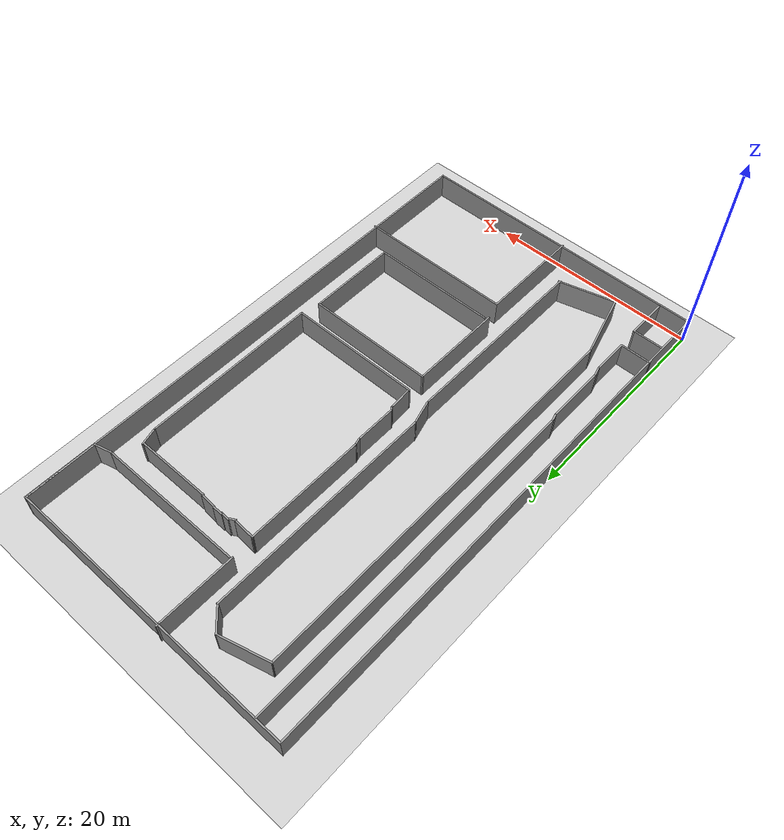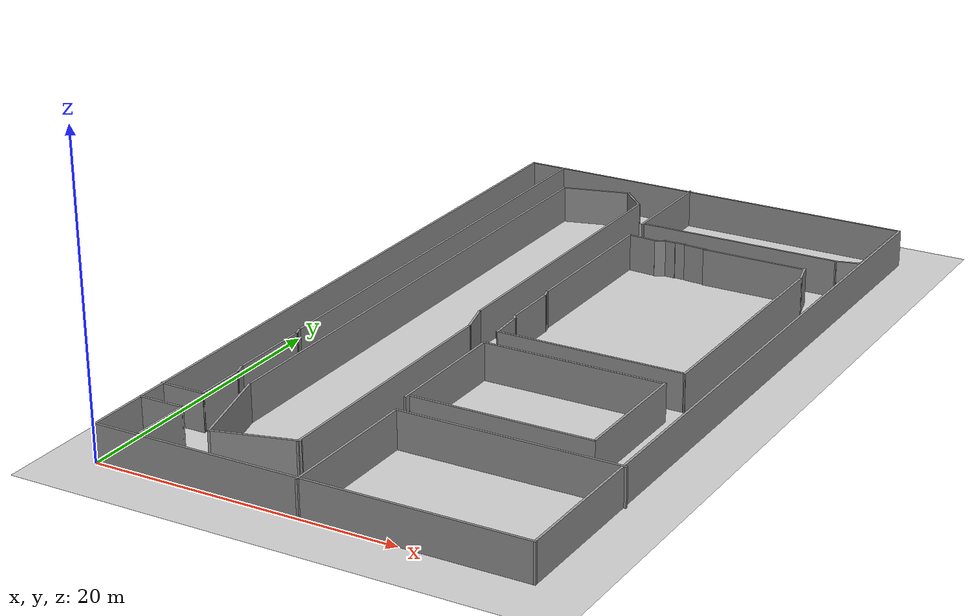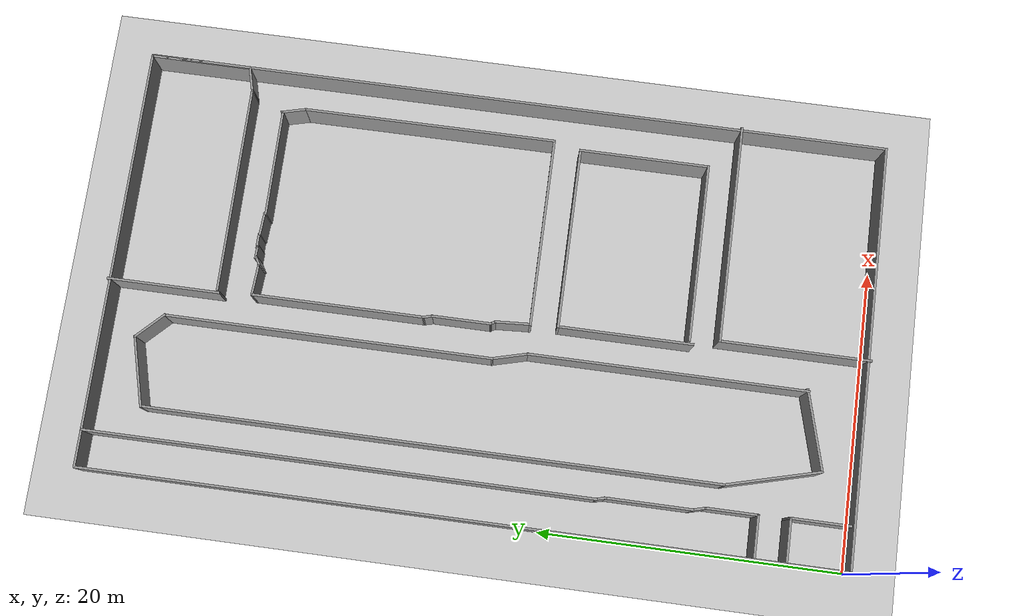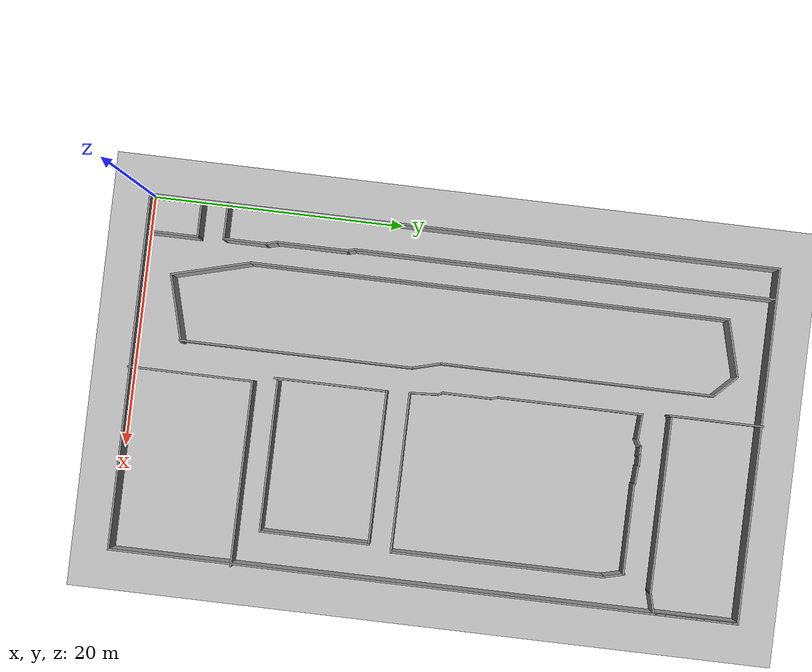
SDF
<?xml version="1.0"?>
<sdf version="1.4">
<world name="diff_robot_world">
<include>
<uri>model://sun</uri>
</include>
<include>
<uri>model://ground_plane</uri>
</include>
<include>

<uri>model://campus2</uri>
<pose>14.197271 24.992161 0 0 0 1.570796326794897</pose>
</include>
</world>
</sdf>

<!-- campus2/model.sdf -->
<sdf version='1.6'>
  <model name='campus2'>
    <pose frame=''>-0.091204 0.059428 0 0 -0 0</pose>
    <link name='Wall_10'>
      <collision name='Wall_10_Collision'>
        <geometry>
          <box>
            <size>14.75 0.15 2.5</size>
          </box>
        </geometry>
        <pose frame=''>0 0 1.25 0 -0 0</pose>
      </collision>
      <visual name='Wall_10_Visual'>
        <pose frame=''>0 0 1.25 0 -0 0</pose>
        <geometry>
          <box>
            <size>14.75 0.15 2.5</size>
          </box>
        </geometry>
        <material>
          <script>
            <uri>file://media/materials/scripts/gazebo.material</uri>
            <name>Gazebo/Grey</name>
          </script>
          <ambient>1 1 1 1</ambient>
        </material>
      </visual>
      <pose frame=''>-15.2127 -6.85313 0 0 0 -1.5708</pose>
    </link>
    <link name='Wall_12'>
      <collision name='Wall_12_Collision'>
        <geometry>
          <box>
            <size>12 0.15 2.5</size>
          </box>
        </geometry>
        <pose frame=''>0 0 1.25 0 -0 0</pose>
      </collision>
      <visual name='Wall_12_Visual'>
        <pose frame=''>0 0 1.25 0 -0 0</pose>
        <geometry>
          <box>
            <size>12 0.15 2.5</size>
          </box>
        </geometry>
        <material>
          <script>
            <uri>file://media/materials/scripts/gazebo.material</uri>
            <name>Gazebo/Grey</name>
          </script>
          <ambient>1 1 1 1</ambient>
        </material>
      </visual>
      <pose frame=''>-13.2463 -5.26585 0 0 0 -1.5708</pose>
    </link>
    <link name='Wall_13'>
      <collision name='Wall_13_Collision'>
        <geometry>
          <box>
            <size>8.75 0.15 2.5</size>
          </box>
        </geometry>
        <pose frame=''>0 0 1.25 0 -0 0</pose>
      </collision>
      <visual name='Wall_13_Visual'>
        <pose frame=''>0 0 1.25 0 -0 0</pose>
        <geometry>
          <box>
            <size>8.75 0.15 2.5</size>
          </box>
        </geometry>
        <material>
          <script>
            <uri>file://media/materials/scripts/gazebo.material</uri>
            <name>Gazebo/Grey</name>
          </script>
          <ambient>1 1 1 1</ambient>
        </material>
      </visual>
      <pose frame=''>-8.94626 -11.1909 0 0 -0 0</pose>
    </link>
    <link name='Wall_14'>
      <collision name='Wall_14_Collision'>
        <geometry>
          <box>
            <size>12.25 0.15 2.5</size>
          </box>
        </geometry>
        <pose frame=''>0 0 1.25 0 -0 0</pose>
      </collision>
      <visual name='Wall_14_Visual'>
        <pose frame=''>0 0 1.25 0 -0 0</pose>
        <geometry>
          <box>
            <size>12.25 0.15 2.5</size>
          </box>
        </geometry>
        <material>
          <script>
            <uri>file://media/materials/scripts/gazebo.material</uri>
            <name>Gazebo/Grey</name>
          </script>
          <ambient>1 1 1 1</ambient>
        </material>
      </visual>
      <pose frame=''>-4.64626 -5.14085 0 0 -0 1.5708</pose>
    </link>
    <link name='Wall_15'>
      <collision name='Wall_15_Collision'>
        <geometry>
          <box>
            <size>9 0.15 2.5</size>
          </box>
        </geometry>
        <pose frame=''>0 0 1.25 0 -0 0</pose>
      </collision>
      <visual name='Wall_15_Visual'>
        <pose frame=''>0 0 1.25 0 -0 0</pose>
        <geometry>
          <box>
            <size>9 0.15 2.5</size>
          </box>
        </geometry>
        <material>
          <script>
            <uri>file://media/materials/scripts/gazebo.material</uri>
            <name>Gazebo/Grey</name>
          </script>
          <ambient>1 1 1 1</ambient>
        </material>
      </visual>
      <pose frame=''>-9.07126 0.909146 0 0 -0 3.14159</pose>
    </link>
    <link name='Wall_19'>
      <collision name='Wall_19_Collision'>
        <geometry>
          <box>
            <size>12.75 0.15 2.5</size>
          </box>
        </geometry>
        <pose frame=''>0 0 1.25 0 -0 0</pose>
      </collision>
      <visual name='Wall_19_Visual'>
        <pose frame=''>0 0 1.25 0 -0 0</pose>
        <geometry>
          <box>
            <size>12.75 0.15 2.5</size>
          </box>
        </geometry>
        <material>
          <script>
            <uri>file://media/materials/scripts/gazebo.material</uri>
            <name>Gazebo/Grey</name>
          </script>
          <ambient>1 1 1 1</ambient>
        </material>
      </visual>
      <pose frame=''>-2.83141 -5.28643 0 0 0 -1.5708</pose>
    </link>
    <link name='Wall_20'>
      <collision name='Wall_20_Collision'>
        <geometry>
          <box>
            <size>17 0.15 2.5</size>
          </box>
        </geometry>
        <pose frame=''>0 0 1.25 0 -0 0</pose>
      </collision>
      <visual name='Wall_20_Visual'>
        <pose frame=''>0 0 1.25 0 -0 0</pose>
        <geometry>
          <box>
            <size>17 0.15 2.5</size>
          </box>
        </geometry>
        <material>
          <script>
            <uri>file://media/materials/scripts/gazebo.material</uri>
            <name>Gazebo/Grey</name>
          </script>
          <ambient>1 1 1 1</ambient>
        </material>
      </visual>
      <pose frame=''>5.59359 -11.5831 0 0 -0 0.001951</pose>
    </link>
    <link name='Wall_21'>
      <collision name='Wall_21_Collision'>
        <geometry>
          <box>
            <size>1.77463 0.15 2.5</size>
          </box>
        </geometry>
        <pose frame=''>0 0 1.25 0 -0 0</pose>
      </collision>
      <visual name='Wall_21_Visual'>
        <pose frame=''>0 0 1.25 0 -0 0</pose>
        <geometry>
          <box>
            <size>1.77463 0.15 2.5</size>
          </box>
        </geometry>
        <material>
          <script>
            <uri>file://media/materials/scripts/gazebo.material</uri>
            <name>Gazebo/Grey</name>
          </script>
          <ambient>1 1 1 1</ambient>
        </material>
      </visual>
      <pose frame=''>14.8054 -11.3649 0 0 -0 0.251054</pose>
    </link>
    <link name='Wall_22'>
      <collision name='Wall_22_Collision'>
        <geometry>
          <box>
            <size>7.25 0.15 2.5</size>
          </box>
        </geometry>
        <pose frame=''>0 0 1.25 0 -0 0</pose>
      </collision>
      <visual name='Wall_22_Visual'>
        <pose frame=''>0 0 1.25 0 -0 0</pose>
        <geometry>
          <box>
            <size>7.25 0.15 2.5</size>
          </box>
        </geometry>
        <material>
          <script>
            <uri>file://media/materials/scripts/gazebo.material</uri>
            <name>Gazebo/Grey</name>
          </script>
          <ambient>1 1 1 1</ambient>
        </material>
      </visual>
      <pose frame=''>15.5223 -7.6131 0 0 -0 1.5708</pose>
    </link>
    <link name='Wall_23'>
      <collision name='Wall_23_Collision'>
        <geometry>
          <box>
            <size>1.58908 0.15 2.5</size>
          </box>
        </geometry>
        <pose frame=''>0 0 1.25 0 -0 0</pose>
      </collision>
      <visual name='Wall_23_Visual'>
        <pose frame=''>0 0 1.25 0 -0 0</pose>
        <geometry>
          <box>
            <size>1.58908 0.15 2.5</size>
          </box>
        </geometry>
        <material>
          <script>
            <uri>file://media/materials/scripts/gazebo.material</uri>
            <name>Gazebo/Grey</name>
          </script>
          <ambient>1 1 1 1</ambient>
        </material>
      </visual>
      <pose frame=''>15.6335 -3.34474 0 0 -0 1.51355</pose>
    </link>
    <link name='Wall_24'>
      <collision name='Wall_24_Collision'>
        <geometry>
          <box>
            <size>1 0.15 2.5</size>
          </box>
        </geometry>
        <pose frame=''>0 0 1.25 0 -0 0</pose>
      </collision>
      <visual name='Wall_24_Visual'>
        <pose frame=''>0 0 1.25 0 -0 0</pose>
        <geometry>
          <box>
            <size>1 0.15 2.5</size>
          </box>
        </geometry>
        <material>
          <script>
            <uri>file://media/materials/scripts/gazebo.material</uri>
            <name>Gazebo/Grey</name>
          </script>
          <ambient>1 1 1 1</ambient>
        </material>
      </visual>
      <pose frame=''>15.7278 -2.14818 0 0 -0 1.5708</pose>
    </link>
    <link name='Wall_25'>
      <collision name='Wall_25_Collision'>
        <geometry>
          <box>
            <size>0.904223 0.15 2.5</size>
          </box>
        </geometry>
        <pose frame=''>0 0 1.25 0 -0 0</pose>
      </collision>
      <visual name='Wall_25_Visual'>
        <pose frame=''>0 0 1.25 0 -0 0</pose>
        <geometry>
          <box>
            <size>0.904223 0.15 2.5</size>
          </box>
        </geometry>
        <material>
          <script>
            <uri>file://media/materials/scripts/gazebo.material</uri>
            <name>Gazebo/Grey</name>
          </script>
          <ambient>1 1 1 1</ambient>
        </material>
      </visual>
      <pose frame=''>15.6905 -1.39961 0 0 -0 1.52872</pose>
    </link>
    <link name='Wall_26'>
      <collision name='Wall_26_Collision'>
        <geometry>
          <box>
            <size>0.75 0.15 2.5</size>
          </box>
        </geometry>
        <pose frame=''>0 0 1.25 0 -0 0</pose>
      </collision>
      <visual name='Wall_26_Visual'>
        <pose frame=''>0 0 1.25 0 -0 0</pose>
        <geometry>
          <box>
            <size>0.75 0.15 2.5</size>
          </box>
        </geometry>
        <material>
          <script>
            <uri>file://media/materials/scripts/gazebo.material</uri>
            <name>Gazebo/Grey</name>
          </script>
          <ambient>1 1 1 1</ambient>
        </material>
      </visual>
      <pose frame=''>15.5161 -0.803248 0 0 -0 2.0944</pose>
    </link>
    <link name='Wall_27'>
      <collision name='Wall_27_Collision'>
        <geometry>
          <box>
            <size>2.12437 0.15 2.5</size>
          </box>
        </geometry>
        <pose frame=''>0 0 1.25 0 -0 0</pose>
      </collision>
      <visual name='Wall_27_Visual'>
        <pose frame=''>0 0 1.25 0 -0 0</pose>
        <geometry>
          <box>
            <size>2.12437 0.15 2.5</size>
          </box>
        </geometry>
        <material>
          <script>
            <uri>file://media/materials/scripts/gazebo.material</uri>
            <name>Gazebo/Grey</name>
          </script>
          <ambient>1 1 1 1</ambient>
        </material>
      </visual>
      <pose frame=''>15.4667 0.482128 0 0 -0 1.50963</pose>
    </link>
    <link name='Wall_28'>
      <collision name='Wall_28_Collision'>
        <geometry>
          <box>
            <size>11.5 0.15 2.5</size>
          </box>
        </geometry>
        <pose frame=''>0 0 1.25 0 -0 0</pose>
      </collision>
      <visual name='Wall_28_Visual'>
        <pose frame=''>0 0 1.25 0 -0 0</pose>
        <geometry>
          <box>
            <size>11.5 0.15 2.5</size>
          </box>
        </geometry>
        <material>
          <script>
            <uri>file://media/materials/scripts/gazebo.material</uri>
            <name>Gazebo/Grey</name>
          </script>
          <ambient>1 1 1 1</ambient>
        </material>
      </visual>
      <pose frame=''>9.85204 1.46747 0 0 -0 3.14159</pose>
    </link>
    <link name='Wall_29'>
      <collision name='Wall_29_Collision'>
        <geometry>
          <box>
            <size>0.75 0.15 2.5</size>
          </box>
        </geometry>
        <pose frame=''>0 0 1.25 0 -0 0</pose>
      </collision>
      <visual name='Wall_29_Visual'>
        <pose frame=''>0 0 1.25 0 -0 0</pose>
        <geometry>
          <box>
            <size>0.75 0.15 2.5</size>
          </box>
        </geometry>
        <material>
          <script>
            <uri>file://media/materials/scripts/gazebo.material</uri>
            <name>Gazebo/Grey</name>
          </script>
          <ambient>1 1 1 1</ambient>
        </material>
      </visual>
      <pose frame=''>3.88726 1.38982 0 0 0 -2.87979</pose>
    </link>
    <link name='Wall_3'>
      <collision name='Wall_3_Collision'>
        <geometry>
          <box>
            <size>50 0.15 2.5</size>
          </box>
        </geometry>
        <pose frame=''>0 0 1.25 0 -0 0</pose>
      </collision>
      <visual name='Wall_3_Visual'>
        <pose frame=''>0 0 1.25 0 -0 0</pose>
        <geometry>
          <box>
            <size>50 0.15 2.5</size>
          </box>
        </geometry>
        <material>
          <script>
            <uri>file://media/materials/scripts/gazebo.material</uri>
            <name>Gazebo/Grey</name>
          </script>
          <ambient>1 1 1 1</ambient>
        </material>
      </visual>
      <pose frame=''>0.003828 14.103 0 0 -0 0</pose>
    </link>
    <link name='Wall_30'>
      <collision name='Wall_30_Collision'>
        <geometry>
          <box>
            <size>4 0.15 2.5</size>
          </box>
        </geometry>
        <pose frame=''>0 0 1.25 0 -0 0</pose>
      </collision>
      <visual name='Wall_30_Visual'>
        <pose frame=''>0 0 1.25 0 -0 0</pose>
        <geometry>
          <box>
            <size>4 0.15 2.5</size>
          </box>
        </geometry>
        <material>
          <script>
            <uri>file://media/materials/scripts/gazebo.material</uri>
            <name>Gazebo/Grey</name>
          </script>
          <ambient>1 1 1 1</ambient>
        </material>
      </visual>
      <pose frame=''>1.67248 1.31218 0 0 -0 3.14159</pose>
    </link>
    <link name='Wall_31'>
      <collision name='Wall_31_Collision'>
        <geometry>
          <box>
            <size>0.5 0.15 2.5</size>
          </box>
        </geometry>
        <pose frame=''>0 0 1.25 0 -0 0</pose>
      </collision>
      <visual name='Wall_31_Visual'>
        <pose frame=''>0 0 1.25 0 -0 0</pose>
        <geometry>
          <box>
            <size>0.5 0.15 2.5</size>
          </box>
        </geometry>
        <material>
          <script>
            <uri>file://media/materials/scripts/gazebo.material</uri>
            <name>Gazebo/Grey</name>
          </script>
          <ambient>1 1 1 1</ambient>
        </material>
      </visual>
      <pose frame=''>-0.404071 1.22468 0 0 0 -2.61799</pose>
    </link>
    <link name='Wall_32'>
      <collision name='Wall_32_Collision'>
        <geometry>
          <box>
            <size>2.42989 0.15 2.5</size>
          </box>
        </geometry>
        <pose frame=''>0 0 1.25 0 -0 0</pose>
      </collision>
      <visual name='Wall_32_Visual'>
        <pose frame=''>0 0 1.25 0 -0 0</pose>
        <geometry>
          <box>
            <size>2.42989 0.15 2.5</size>
          </box>
        </geometry>
        <material>
          <script>
            <uri>file://media/materials/scripts/gazebo.material</uri>
            <name>Gazebo/Grey</name>
          </script>
          <ambient>1 1 1 1</ambient>
        </material>
      </visual>
      <pose frame=''>-1.69352 1.0688 0 0 0 -3.08157</pose>
    </link>
    <link name='Wall_34'>
      <collision name='Wall_34_Collision'>
        <geometry>
          <box>
            <size>14 0.15 2.5</size>
          </box>
        </geometry>
        <pose frame=''>0 0 1.25 0 -0 0</pose>
      </collision>
      <visual name='Wall_34_Visual'>
        <pose frame=''>0 0 1.25 0 -0 0</pose>
        <geometry>
          <box>
            <size>14 0.15 2.5</size>
          </box>
        </geometry>
        <material>
          <script>
            <uri>file://media/materials/scripts/gazebo.material</uri>
            <name>Gazebo/Grey</name>
          </script>
          <ambient>1 1 1 1</ambient>
        </material>
      </visual>
      <pose frame=''>17.8298 -5.4683 0 0 0 -1.5708</pose>
    </link>
    <link name='Wall_35'>
      <collision name='Wall_35_Collision'>
        <geometry>
          <box>
            <size>1.75 0.15 2.5</size>
          </box>
        </geometry>
        <pose frame=''>0 0 1.25 0 -0 0</pose>
      </collision>
      <visual name='Wall_35_Visual'>
        <pose frame=''>0 0 1.25 0 -0 0</pose>
        <geometry>
          <box>
            <size>1.75 0.15 2.5</size>
          </box>
        </geometry>
        <material>
          <script>
            <uri>file://media/materials/scripts/gazebo.material</uri>
            <name>Gazebo/Grey</name>
          </script>
          <ambient>1 1 1 1</ambient>
        </material>
      </visual>
      <pose frame=''>18.0368 -13.166 0 0 0 -1.309</pose>
    </link>
    <link name='Wall_36'>
      <collision name='Wall_36_Collision'>
        <geometry>
          <box>
            <size>6.75 0.15 2.5</size>
          </box>
        </geometry>
        <pose frame=''>0 0 1.25 0 -0 0</pose>
      </collision>
      <visual name='Wall_36_Visual'>
        <pose frame=''>0 0 1.25 0 -0 0</pose>
        <geometry>
          <box>
            <size>6.75 0.15 2.5</size>
          </box>
        </geometry>
        <material>
          <script>
            <uri>file://media/materials/scripts/gazebo.material</uri>
            <name>Gazebo/Grey</name>
          </script>
          <ambient>1 1 1 1</ambient>
        </material>
      </visual>
      <pose frame=''>21.5439 -13.9388 0 0 -0 0</pose>
    </link>
    <link name='Wall_38'>
      <collision name='Wall_38_Collision'>
        <geometry>
          <box>
            <size>7.5 0.15 2.5</size>
          </box>
        </geometry>
        <pose frame=''>0 0 1.25 0 -0 0</pose>
      </collision>
      <visual name='Wall_38_Visual'>
        <pose frame=''>0 0 1.25 0 -0 0</pose>
        <geometry>
          <box>
            <size>7.5 0.15 2.5</size>
          </box>
        </geometry>
        <material>
          <script>
            <uri>file://media/materials/scripts/gazebo.material</uri>
            <name>Gazebo/Grey</name>
          </script>
          <ambient>1 1 1 1</ambient>
        </material>
      </visual>
      <pose frame=''>21.3877 1.64024 0 0 -0 0</pose>
    </link>
    <link name='Wall_4'>
      <collision name='Wall_4_Collision'>
        <geometry>
          <box>
            <size>28.25 0.15 2.5</size>
          </box>
        </geometry>
        <pose frame=''>0 0 1.25 0 -0 0</pose>
      </collision>
      <visual name='Wall_4_Visual'>
        <pose frame=''>0 0 1.25 0 -0 0</pose>
        <geometry>
          <box>
            <size>28.25 0.15 2.5</size>
          </box>
        </geometry>
        <material>
          <script>
            <uri>file://media/materials/scripts/gazebo.material</uri>
            <name>Gazebo/Grey</name>
          </script>
          <ambient>1 1 1 1</ambient>
        </material>
      </visual>
      <pose frame=''>24.9288 0.052987 0 0 0 -1.5708</pose>
    </link>
    <link name='Wall_40'>
      <collision name='Wall_40_Collision'>
        <geometry>
          <box>
            <size>3 0.15 2.5</size>
          </box>
        </geometry>
        <pose frame=''>0 0 1.25 0 -0 0</pose>
      </collision>
      <visual name='Wall_40_Visual'>
        <pose frame=''>0 0 1.25 0 -0 0</pose>
        <geometry>
          <box>
            <size>3 0.15 2.5</size>
          </box>
        </geometry>
        <material>
          <script>
            <uri>file://media/materials/scripts/gazebo.material</uri>
            <name>Gazebo/Grey</name>
          </script>
          <ambient>1 1 1 1</ambient>
        </material>
      </visual>
      <pose frame=''>-20.8391 12.6398 0 0 0 -1.5708</pose>
    </link>
    <link name='Wall_41'>
      <collision name='Wall_41_Collision'>
        <geometry>
          <box>
            <size>4 0.15 2.5</size>
          </box>
        </geometry>
        <pose frame=''>0 0 1.25 0 -0 0</pose>
      </collision>
      <visual name='Wall_41_Visual'>
        <pose frame=''>0 0 1.25 0 -0 0</pose>
        <geometry>
          <box>
            <size>4 0.15 2.5</size>
          </box>
        </geometry>
        <material>
          <script>
            <uri>file://media/materials/scripts/gazebo.material</uri>
            <name>Gazebo/Grey</name>
          </script>
          <ambient>1 1 1 1</ambient>
        </material>
      </visual>
      <pose frame=''>-22.7641 11.2148 0 0 -0 3.14159</pose>
    </link>
    <link name='Wall_43'>
      <collision name='Wall_43_Collision'>
        <geometry>
          <box>
            <size>3 0.15 2.5</size>
          </box>
        </geometry>
        <pose frame=''>0 0 1.25 0 -0 0</pose>
      </collision>
      <visual name='Wall_43_Visual'>
        <pose frame=''>0 0 1.25 0 -0 0</pose>
        <geometry>
          <box>
            <size>3 0.15 2.5</size>
          </box>
        </geometry>
        <material>
          <script>
            <uri>file://media/materials/scripts/gazebo.material</uri>
            <name>Gazebo/Grey</name>
          </script>
          <ambient>1 1 1 1</ambient>
        </material>
      </visual>
      <pose frame=''>-18.7769 12.7281 0 0 0 -1.5708</pose>
    </link>
    <link name='Wall_44'>
      <collision name='Wall_44_Collision'>
        <geometry>
          <box>
            <size>3.5 0.15 2.5</size>
          </box>
        </geometry>
        <pose frame=''>0 0 1.25 0 -0 0</pose>
      </collision>
      <visual name='Wall_44_Visual'>
        <pose frame=''>0 0 1.25 0 -0 0</pose>
        <geometry>
          <box>
            <size>3.5 0.15 2.5</size>
          </box>
        </geometry>
        <material>
          <script>
            <uri>file://media/materials/scripts/gazebo.material</uri>
            <name>Gazebo/Grey</name>
          </script>
          <ambient>1 1 1 1</ambient>
        </material>
      </visual>
      <pose frame=''>-17.1019 11.3031 0 0 -0 0</pose>
    </link>
    <link name='Wall_45'>
      <collision name='Wall_45_Collision'>
        <geometry>
          <box>
            <size>1 0.15 2.5</size>
          </box>
        </geometry>
        <pose frame=''>0 0 1.25 0 -0 0</pose>
      </collision>
      <visual name='Wall_45_Visual'>
        <pose frame=''>0 0 1.25 0 -0 0</pose>
        <geometry>
          <box>
            <size>1 0.15 2.5</size>
          </box>
        </geometry>
        <material>
          <script>
            <uri>file://media/materials/scripts/gazebo.material</uri>
            <name>Gazebo/Grey</name>
          </script>
          <ambient>1 1 1 1</ambient>
        </material>
      </visual>
      <pose frame=''>-15.0164 11.4131 0 0 -0 0.261799</pose>
    </link>
    <link name='Wall_46'>
      <collision name='Wall_46_Collision'>
        <geometry>
          <box>
            <size>5.75 0.15 2.5</size>
          </box>
        </geometry>
        <pose frame=''>0 0 1.25 0 -0 0</pose>
      </collision>
      <visual name='Wall_46_Visual'>
        <pose frame=''>0 0 1.25 0 -0 0</pose>
        <geometry>
          <box>
            <size>5.75 0.15 2.5</size>
          </box>
        </geometry>
        <material>
          <script>
            <uri>file://media/materials/scripts/gazebo.material</uri>
            <name>Gazebo/Grey</name>
          </script>
          <ambient>1 1 1 1</ambient>
        </material>
      </visual>
      <pose frame=''>-11.8059 11.5231 0 0 -0 0</pose>
    </link>
    <link name='Wall_47'>
      <collision name='Wall_47_Collision'>
        <geometry>
          <box>
            <size>0.75 0.15 2.5</size>
          </box>
        </geometry>
        <pose frame=''>0 0 1.25 0 -0 0</pose>
      </collision>
      <visual name='Wall_47_Visual'>
        <pose frame=''>0 0 1.25 0 -0 0</pose>
        <geometry>
          <box>
            <size>0.75 0.15 2.5</size>
          </box>
        </geometry>
        <material>
          <script>
            <uri>file://media/materials/scripts/gazebo.material</uri>
            <name>Gazebo/Grey</name>
          </script>
          <ambient>1 1 1 1</ambient>
        </material>
      </visual>
      <pose frame=''>-8.7161 11.6008 0 0 -0 0.261799</pose>
    </link>
    <link name='Wall_48'>
      <collision name='Wall_48_Collision'>
        <geometry>
          <box>
            <size>33.5 0.15 2.5</size>
          </box>
        </geometry>
        <pose frame=''>0 0 1.25 0 -0 0</pose>
      </collision>
      <visual name='Wall_48_Visual'>
        <pose frame=''>0 0 1.25 0 -0 0</pose>
        <geometry>
          <box>
            <size>33.5 0.15 2.5</size>
          </box>
        </geometry>
        <material>
          <script>
            <uri>file://media/materials/scripts/gazebo.material</uri>
            <name>Gazebo/Grey</name>
          </script>
          <ambient>1 1 1 1</ambient>
        </material>
      </visual>
      <pose frame=''>8.24868 11.6784 0 0 -0 0</pose>
    </link>
    <link name='Wall_5'>
      <collision name='Wall_5_Collision'>
        <geometry>
          <box>
            <size>50 0.15 2.5</size>
          </box>
        </geometry>
        <pose frame=''>0 0 1.25 0 -0 0</pose>
      </collision>
      <visual name='Wall_5_Visual'>
        <pose frame=''>0 0 1.25 0 -0 0</pose>
        <geometry>
          <box>
            <size>50 0.15 2.5</size>
          </box>
        </geometry>
        <material>
          <script>
            <uri>file://media/materials/scripts/gazebo.material</uri>
            <name>Gazebo/Grey</name>
          </script>
          <ambient>1 1 1 1</ambient>
        </material>
      </visual>
      <pose frame=''>0.003828 -13.997 0 0 -0 3.14159</pose>
    </link>
    <link name='Wall_56'>
      <collision name='Wall_56_Collision'>
        <geometry>
          <box>
            <size>18.5 0.15 2.5</size>
          </box>
        </geometry>
        <pose frame=''>0 0 1.25 0 -0 0</pose>
      </collision>
      <visual name='Wall_56_Visual'>
        <pose frame=''>0 0 1.25 0 -0 0</pose>
        <geometry>
          <box>
            <size>18.5 0.15 2.5</size>
          </box>
        </geometry>
        <material>
          <script>
            <uri>file://media/materials/scripts/gazebo.material</uri>
            <name>Gazebo/Grey</name>
          </script>
          <ambient>1 1 1 1</ambient>
        </material>
      </visual>
      <pose frame=''>-12.0919 2.96907 0 0 -0 0</pose>
    </link>
    <link name='Wall_57'>
      <collision name='Wall_57_Collision'>
        <geometry>
          <box>
            <size>2.5 0.15 2.5</size>
          </box>
        </geometry>
        <pose frame=''>0 0 1.25 0 -0 0</pose>
      </collision>
      <visual name='Wall_57_Visual'>
        <pose frame=''>0 0 1.25 0 -0 0</pose>
        <geometry>
          <box>
            <size>2.5 0.15 2.5</size>
          </box>
        </geometry>
        <material>
          <script>
            <uri>file://media/materials/scripts/gazebo.material</uri>
            <name>Gazebo/Grey</name>
          </script>
          <ambient>1 1 1 1</ambient>
        </material>
      </visual>
      <pose frame=''>-1.78195 3.27318 0 0 -0 0.261799</pose>
    </link>
    <link name='Wall_58'>
      <collision name='Wall_58_Collision'>
        <geometry>
          <box>
            <size>21.75 0.15 2.5</size>
          </box>
        </geometry>
        <pose frame=''>0 0 1.25 0 -0 0</pose>
      </collision>
      <visual name='Wall_58_Visual'>
        <pose frame=''>0 0 1.25 0 -0 0</pose>
        <geometry>
          <box>
            <size>21.75 0.15 2.5</size>
          </box>
        </geometry>
        <material>
          <script>
            <uri>file://media/materials/scripts/gazebo.material</uri>
            <name>Gazebo/Grey</name>
          </script>
          <ambient>1 1 1 1</ambient>
        </material>
      </visual>
      <pose frame=''>10.153 3.57729 0 0 -0 0</pose>
    </link>
    <link name='Wall_59'>
      <collision name='Wall_59_Collision'>
        <geometry>
          <box>
            <size>2.5 0.15 2.5</size>
          </box>
        </geometry>
        <pose frame=''>0 0 1.25 0 -0 0</pose>
      </collision>
      <visual name='Wall_59_Visual'>
        <pose frame=''>0 0 1.25 0 -0 0</pose>
        <geometry>
          <box>
            <size>2.5 0.15 2.5</size>
          </box>
        </geometry>
        <material>
          <script>
            <uri>file://media/materials/scripts/gazebo.material</uri>
            <name>Gazebo/Grey</name>
          </script>
          <ambient>1 1 1 1</ambient>
        </material>
      </visual>
      <pose frame=''>21.7839 4.40814 0 0 -0 0.785398</pose>
    </link>
    <link name='Wall_6'>
      <collision name='Wall_6_Collision'>
        <geometry>
          <box>
            <size>28.25 0.15 2.5</size>
          </box>
        </geometry>
        <pose frame=''>0 0 1.25 0 -0 0</pose>
      </collision>
      <visual name='Wall_6_Visual'>
        <pose frame=''>0 0 1.25 0 -0 0</pose>
        <geometry>
          <box>
            <size>28.25 0.15 2.5</size>
          </box>
        </geometry>
        <material>
          <script>
            <uri>file://media/materials/scripts/gazebo.material</uri>
            <name>Gazebo/Grey</name>
          </script>
          <ambient>1 1 1 1</ambient>
        </material>
      </visual>
      <pose frame=''>-24.9212 0.052987 0 0 -0 1.5708</pose>
    </link>
    <link name='Wall_60'>
      <collision name='Wall_60_Collision'>
        <geometry>
          <box>
            <size>4.75 0.15 2.5</size>
          </box>
        </geometry>
        <pose frame=''>0 0 1.25 0 -0 0</pose>
      </collision>
      <visual name='Wall_60_Visual'>
        <pose frame=''>0 0 1.25 0 -0 0</pose>
        <geometry>
          <box>
            <size>4.75 0.15 2.5</size>
          </box>
        </geometry>
        <material>
          <script>
            <uri>file://media/materials/scripts/gazebo.material</uri>
            <name>Gazebo/Grey</name>
          </script>
          <ambient>1 1 1 1</ambient>
        </material>
      </visual>
      <pose frame=''>22.0194 7.46062 0 0 -0 1.8326</pose>
    </link>
    <link name='Wall_61'>
      <collision name='Wall_61_Collision'>
        <geometry>
          <box>
            <size>38 0.15 2.5</size>
          </box>
        </geometry>
        <pose frame=''>0 0 1.25 0 -0 0</pose>
      </collision>
      <visual name='Wall_61_Visual'>
        <pose frame=''>0 0 1.25 0 -0 0</pose>
        <geometry>
          <box>
            <size>38 0.15 2.5</size>
          </box>
        </geometry>
        <material>
          <script>
            <uri>file://media/materials/scripts/gazebo.material</uri>
            <name>Gazebo/Grey</name>
          </script>
          <ambient>1 1 1 1</ambient>
        </material>
      </visual>
      <pose frame=''>2.49914 9.68225 0 0 -0 3.14159</pose>
    </link>
    <link name='Wall_62'>
      <collision name='Wall_62_Collision'>
        <geometry>
          <box>
            <size>6.5 0.15 2.5</size>
          </box>
        </geometry>
        <pose frame=''>0 0 1.25 0 -0 0</pose>
      </collision>
      <visual name='Wall_62_Visual'>
        <pose frame=''>0 0 1.25 0 -0 0</pose>
        <geometry>
          <box>
            <size>6.5 0.15 2.5</size>
          </box>
        </geometry>
        <material>
          <script>
            <uri>file://media/materials/scripts/gazebo.material</uri>
            <name>Gazebo/Grey</name>
          </script>
          <ambient>1 1 1 1</ambient>
        </material>
      </visual>
      <pose frame=''>-19.4927 8.8605 0 0 0 -2.87979</pose>
    </link>
    <link name='Wall_64'>
      <collision name='Wall_64_Collision'>
        <geometry>
          <box>
            <size>5.5 0.15 2.5</size>
          </box>
        </geometry>
        <pose frame=''>0 0 1.25 0 -0 0</pose>
      </collision>
      <visual name='Wall_64_Visual'>
        <pose frame=''>0 0 1.25 0 -0 0</pose>
        <geometry>
          <box>
            <size>5.5 0.15 2.5</size>
          </box>
        </geometry>
        <material>
          <script>
            <uri>file://media/materials/scripts/gazebo.material</uri>
            <name>Gazebo/Grey</name>
          </script>
          <ambient>1 1 1 1</ambient>
        </material>
      </visual>
      <pose frame=''>-21.8671 5.4549 0 0 0 -1.309</pose>
    </link>
    <link name='Wall_9'>
      <collision name='Wall_9_Collision'>
        <geometry>
          <box>
            <size>10 0.15 2.5</size>
          </box>
        </geometry>
        <pose frame=''>0 0 1.25 0 -0 0</pose>
      </collision>
      <visual name='Wall_9_Visual'>
        <pose frame=''>0 0 1.25 0 -0 0</pose>
        <geometry>
          <box>
            <size>10 0.15 2.5</size>
          </box>
        </geometry>
        <material>
          <script>
            <uri>file://media/materials/scripts/gazebo.material</uri>
            <name>Gazebo/Grey</name>
          </script>
          <ambient>1 1 1 1</ambient>
        </material>
      </visual>
      <pose frame=''>-20.1377 0.446875 0 0 -0 0</pose>
    </link>
    <static>1</static>
  </model>
</sdf>
